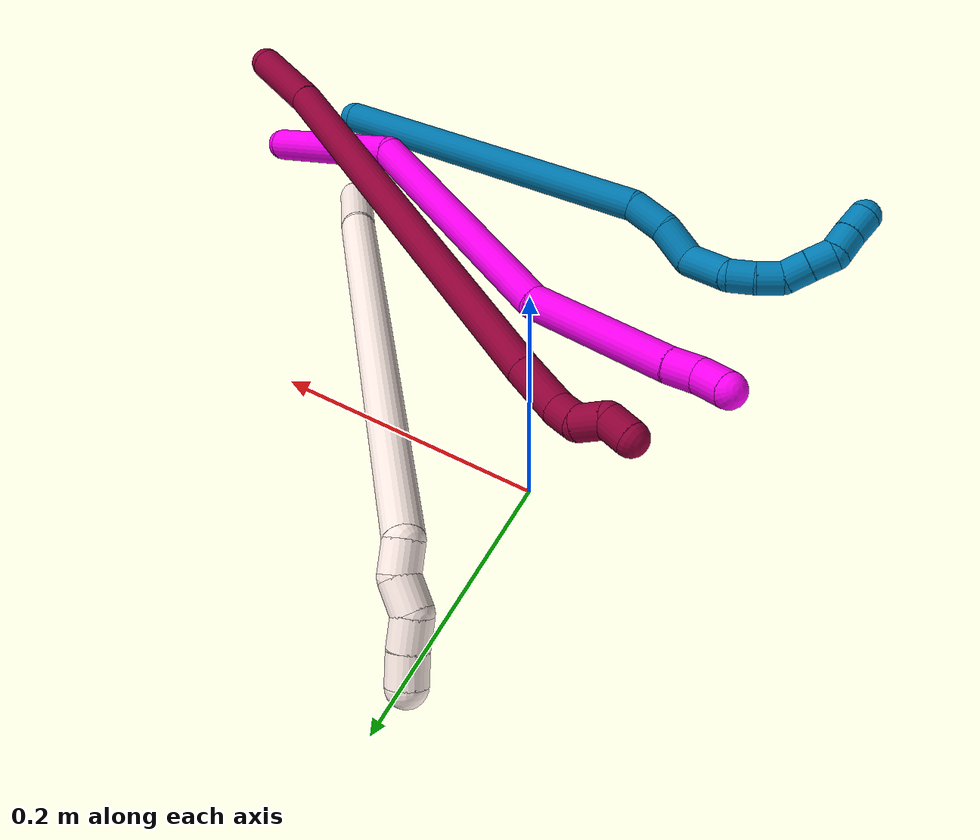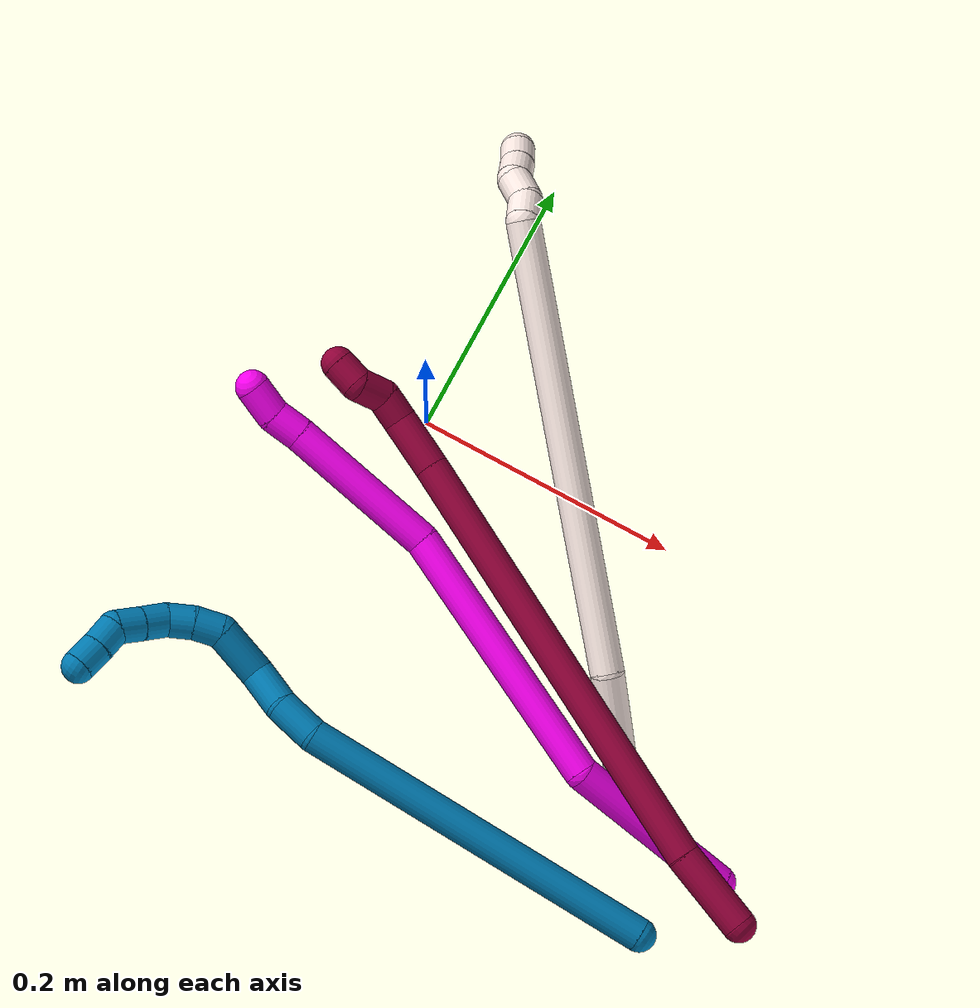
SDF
<sdf version="1.7">
 <world name="default">
  <model name="8">
   <static>0</static>
   <link name="8">
    <collision name="collision-cylinder-e_1_1_4">
     <pose>-0.001052 0.003684 -0.030771 -3.02244 -0.033928 0.554224</pose>
     <geometry><cylinder><radius>0.0125</radius><length>0.062018</length></cylinder></geometry>
     <surface>
      <friction><ode><mu>1.16</mu><mu2>1.16</mu2><slip1>0</slip1><slip2>0</slip2></ode></friction>
      <contact><ode><kp>1e+06</kp><kd>1</kd><max_vel>0</max_vel><min_depth>0.001</min_depth></ode></contact>
     </surface>
    </collision>
    <visual name="visual-cylinder-e_1_1_4">
     <pose>-0.001052 0.003684 -0.030771 -3.02244 -0.033928 0.554224</pose>
     <geometry><cylinder><radius>0.0125</radius><length>0.062018</length></cylinder></geometry>
     <material><ambient>0.584314 0 0.227451 1</ambient></material>
    </visual>
    <collision name="collision-cylinder-e_2_4_5">
     <pose>-0.017382 0.04238 -0.223273 -2.9284 -0.092065 0.813041</pose>
     <geometry><cylinder><radius>0.0125</radius><length>0.332361</length></cylinder></geometry>
     <surface>
      <friction><ode><mu>1.16</mu><mu2>1.16</mu2><slip1>0</slip1><slip2>0</slip2></ode></friction>
      <contact><ode><kp>1e+06</kp><kd>1</kd><max_vel>0</max_vel><min_depth>0.001</min_depth></ode></contact>
     </surface>
    </collision>
    <visual name="visual-cylinder-e_2_4_5">
     <pose>-0.017382 0.04238 -0.223273 -2.9284 -0.092065 0.813041</pose>
     <geometry><cylinder><radius>0.0125</radius><length>0.332361</length></cylinder></geometry>
     <material><ambient>0.584314 0 0.227451 1</ambient></material>
    </visual>
    <collision name="collision-cylinder-e_3_5_6">
     <pose>-0.034722 0.080782 -0.405328 -2.97636 -0.099778 1.08522</pose>
     <geometry><cylinder><radius>0.0125</radius><length>0.041415</length></cylinder></geometry>
     <surface>
      <friction><ode><mu>1.16</mu><mu2>1.16</mu2><slip1>0</slip1><slip2>0</slip2></ode></friction>
      <contact><ode><kp>1e+06</kp><kd>1</kd><max_vel>0</max_vel><min_depth>0.001</min_depth></ode></contact>
     </surface>
    </collision>
    <visual name="visual-cylinder-e_3_5_6">
     <pose>-0.034722 0.080782 -0.405328 -2.97636 -0.099778 1.08522</pose>
     <geometry><cylinder><radius>0.0125</radius><length>0.041415</length></cylinder></geometry>
     <material><ambient>0.584314 0 0.227451 1</ambient></material>
    </visual>
    <collision name="collision-cylinder-e_4_6_7">
     <pose>-0.039425 0.083405 -0.435877 3.06688 -0.251957 -2.5677</pose>
     <geometry><cylinder><radius>0.0125</radius><length>0.021177</length></cylinder></geometry>
     <surface>
      <friction><ode><mu>1.16</mu><mu2>1.16</mu2><slip1>0</slip1><slip2>0</slip2></ode></friction>
      <contact><ode><kp>1e+06</kp><kd>1</kd><max_vel>0</max_vel><min_depth>0.001</min_depth></ode></contact>
     </surface>
    </collision>
    <visual name="visual-cylinder-e_4_6_7">
     <pose>-0.039425 0.083405 -0.435877 3.06688 -0.251957 -2.5677</pose>
     <geometry><cylinder><radius>0.0125</radius><length>0.021177</length></cylinder></geometry>
     <material><ambient>0.584314 0 0.227451 1</ambient></material>
    </visual>
    <collision name="collision-cylinder-e_5_7_8">
     <pose>-0.042092 0.075832 -0.455387 2.5089 -0.002423 -0.007402</pose>
     <geometry><cylinder><radius>0.0125</radius><length>0.023025</length></cylinder></geometry>
     <surface>
      <friction><ode><mu>1.16</mu><mu2>1.16</mu2><slip1>0</slip1><slip2>0</slip2></ode></friction>
      <contact><ode><kp>1e+06</kp><kd>1</kd><max_vel>0</max_vel><min_depth>0.001</min_depth></ode></contact>
     </surface>
    </collision>
    <visual name="visual-cylinder-e_5_7_8">
     <pose>-0.042092 0.075832 -0.455387 2.5089 -0.002423 -0.007402</pose>
     <geometry><cylinder><radius>0.0125</radius><length>0.023025</length></cylinder></geometry>
     <material><ambient>0.584314 0 0.227451 1</ambient></material>
    </visual>
    <collision name="collision-cylinder-e_6_8_2">
     <pose>-0.042017 0.069748 -0.474646 -3.06917 0.010256 -0.28124</pose>
     <geometry><cylinder><radius>0.0125</radius><length>0.020003</length></cylinder></geometry>
     <surface>
      <friction><ode><mu>1.16</mu><mu2>1.16</mu2><slip1>0</slip1><slip2>0</slip2></ode></friction>
      <contact><ode><kp>1e+06</kp><kd>1</kd><max_vel>0</max_vel><min_depth>0.001</min_depth></ode></contact>
     </surface>
    </collision>
    <visual name="visual-cylinder-e_6_8_2">
     <pose>-0.042017 0.069748 -0.474646 -3.06917 0.010256 -0.28124</pose>
     <geometry><cylinder><radius>0.0125</radius><length>0.020003</length></cylinder></geometry>
     <material><ambient>0.584314 0 0.227451 1</ambient></material>
    </visual>
    <collision name="collision-sphere-2">
     <pose>-0.041915 0.070472 -0.484621 0 -0 0</pose>
     <geometry><sphere><radius>0.0125</radius></sphere></geometry>
     <surface>
      <friction><ode><mu>1.16</mu><mu2>1.16</mu2><slip1>0</slip1><slip2>0</slip2></ode></friction>
      <contact><ode><kp>1e+06</kp><kd>1</kd><max_vel>0</max_vel><min_depth>0.001</min_depth></ode></contact>
     </surface>
    </collision>
    <visual name="visual-sphere-2">
     <pose>-0.041915 0.070472 -0.484621 0 -0 0</pose>
     <geometry><sphere><radius>0.0125</radius></sphere></geometry>
     <material><ambient>0.584314 0 0.227451 1</ambient></material>
    </visual>
    <collision name="collision-sphere-4">
     <pose>-0.002104 0.007368 -0.061543 0 -0 0</pose>
     <geometry><sphere><radius>0.0125</radius></sphere></geometry>
     <surface>
      <friction><ode><mu>1.16</mu><mu2>1.16</mu2><slip1>0</slip1><slip2>0</slip2></ode></friction>
      <contact><ode><kp>1e+06</kp><kd>1</kd><max_vel>0</max_vel><min_depth>0.001</min_depth></ode></contact>
     </surface>
    </collision>
    <visual name="visual-sphere-4">
     <pose>-0.002104 0.007368 -0.061543 0 -0 0</pose>
     <geometry><sphere><radius>0.0125</radius></sphere></geometry>
     <material><ambient>0.584314 0 0.227451 1</ambient></material>
    </visual>
    <collision name="collision-sphere-1">
     <geometry><sphere><radius>0.0125</radius></sphere></geometry>
     <surface>
      <friction><ode><mu>1.16</mu><mu2>1.16</mu2><slip1>0</slip1><slip2>0</slip2></ode></friction>
      <contact><ode><kp>1e+06</kp><kd>1</kd><max_vel>0</max_vel><min_depth>0.001</min_depth></ode></contact>
     </surface>
    </collision>
    <visual name="visual-sphere-1">
     <geometry><sphere><radius>0.0125</radius></sphere></geometry>
     <material><ambient>0.584314 0 0.227451 1</ambient></material>
    </visual>
    <collision name="collision-sphere-8">
     <pose>-0.04212 0.069025 -0.464671 0 -0 0</pose>
     <geometry><sphere><radius>0.0125</radius></sphere></geometry>
     <surface>
      <friction><ode><mu>1.16</mu><mu2>1.16</mu2><slip1>0</slip1><slip2>0</slip2></ode></friction>
      <contact><ode><kp>1e+06</kp><kd>1</kd><max_vel>0</max_vel><min_depth>0.001</min_depth></ode></contact>
     </surface>
    </collision>
    <visual name="visual-sphere-8">
     <pose>-0.04212 0.069025 -0.464671 0 -0 0</pose>
     <geometry><sphere><radius>0.0125</radius></sphere></geometry>
     <material><ambient>0.584314 0 0.227451 1</ambient></material>
    </visual>
    <collision name="collision-sphere-5">
     <pose>-0.032659 0.077392 -0.385004 0 -0 0</pose>
     <geometry><sphere><radius>0.0125</radius></sphere></geometry>
     <surface>
      <friction><ode><mu>1.16</mu><mu2>1.16</mu2><slip1>0</slip1><slip2>0</slip2></ode></friction>
      <contact><ode><kp>1e+06</kp><kd>1</kd><max_vel>0</max_vel><min_depth>0.001</min_depth></ode></contact>
     </surface>
    </collision>
    <visual name="visual-sphere-5">
     <pose>-0.032659 0.077392 -0.385004 0 -0 0</pose>
     <geometry><sphere><radius>0.0125</radius></sphere></geometry>
     <material><ambient>0.584314 0 0.227451 1</ambient></material>
    </visual>
    <collision name="collision-sphere-6">
     <pose>-0.036785 0.084171 -0.425652 0 -0 0</pose>
     <geometry><sphere><radius>0.0125</radius></sphere></geometry>
     <surface>
      <friction><ode><mu>1.16</mu><mu2>1.16</mu2><slip1>0</slip1><slip2>0</slip2></ode></friction>
      <contact><ode><kp>1e+06</kp><kd>1</kd><max_vel>0</max_vel><min_depth>0.001</min_depth></ode></contact>
     </surface>
    </collision>
    <visual name="visual-sphere-6">
     <pose>-0.036785 0.084171 -0.425652 0 -0 0</pose>
     <geometry><sphere><radius>0.0125</radius></sphere></geometry>
     <material><ambient>0.584314 0 0.227451 1</ambient></material>
    </visual>
    <collision name="collision-sphere-7">
     <pose>-0.042064 0.08264 -0.446103 0 -0 0</pose>
     <geometry><sphere><radius>0.0125</radius></sphere></geometry>
     <surface>
      <friction><ode><mu>1.16</mu><mu2>1.16</mu2><slip1>0</slip1><slip2>0</slip2></ode></friction>
      <contact><ode><kp>1e+06</kp><kd>1</kd><max_vel>0</max_vel><min_depth>0.001</min_depth></ode></contact>
     </surface>
    </collision>
    <visual name="visual-sphere-7">
     <pose>-0.042064 0.08264 -0.446103 0 -0 0</pose>
     <geometry><sphere><radius>0.0125</radius></sphere></geometry>
     <material><ambient>0.584314 0 0.227451 1</ambient></material>
    </visual>
    <inertial>
     <pose>-0.01985 0.045134 -0.244226 0 -0 0</pose>
     <mass>0.5</mass>
     <inertia>
      <ixx>0.004363</ixx>
      <ixy>0</ixy>
      <ixz>0</ixz>
      <iyy>0.000201</iyy>
      <iyz>0</iyz>
      <izz>-0.000404</izz>
     </inertia>
    </inertial>
   </link>
   <pose>0.374282 -0.227285 0.070635 -1.70466 0.721944 -1.95806</pose>
  </model>
  <model name="9">
   <static>0</static>
   <link name="9">
    <collision name="collision-cylinder-e_1_1_4">
     <pose>-0.010007 5.3e-05 -0.136772 -3.1412 -0.073035 3.13089</pose>
     <geometry><cylinder><radius>0.0125</radius><length>0.274276</length></cylinder></geometry>
     <surface>
      <friction><ode><mu>1.16</mu><mu2>1.16</mu2><slip1>0</slip1><slip2>0</slip2></ode></friction>
      <contact><ode><kp>1e+06</kp><kd>1</kd><max_vel>0</max_vel><min_depth>0.001</min_depth></ode></contact>
     </surface>
    </collision>
    <visual name="visual-cylinder-e_1_1_4">
     <pose>-0.010007 5.3e-05 -0.136772 -3.1412 -0.073035 3.13089</pose>
     <geometry><cylinder><radius>0.0125</radius><length>0.274276</length></cylinder></geometry>
     <material><ambient>0 0.490196 0.709804 1</ambient></material>
    </visual>
    <collision name="collision-cylinder-e_2_4_5">
     <pose>-0.016527 -0.000874 -0.289067 3.07845 0.220548 2.58593</pose>
     <geometry><cylinder><radius>0.0125</radius><length>0.03188</length></cylinder></geometry>
     <surface>
      <friction><ode><mu>1.16</mu><mu2>1.16</mu2><slip1>0</slip1><slip2>0</slip2></ode></friction>
      <contact><ode><kp>1e+06</kp><kd>1</kd><max_vel>0</max_vel><min_depth>0.001</min_depth></ode></contact>
     </surface>
    </collision>
    <visual name="visual-cylinder-e_2_4_5">
     <pose>-0.016527 -0.000874 -0.289067 3.07845 0.220548 2.58593</pose>
     <geometry><cylinder><radius>0.0125</radius><length>0.03188</length></cylinder></geometry>
     <material><ambient>0 0.490196 0.709804 1</ambient></material>
    </visual>
    <collision name="collision-cylinder-e_3_5_6">
     <pose>-0.005602 -0.004046 -0.318799 2.98862 0.47744 2.53145</pose>
     <geometry><cylinder><radius>0.0125</radius><length>0.032375</length></cylinder></geometry>
     <surface>
      <friction><ode><mu>1.16</mu><mu2>1.16</mu2><slip1>0</slip1><slip2>0</slip2></ode></friction>
      <contact><ode><kp>1e+06</kp><kd>1</kd><max_vel>0</max_vel><min_depth>0.001</min_depth></ode></contact>
     </surface>
    </collision>
    <visual name="visual-cylinder-e_3_5_6">
     <pose>-0.005602 -0.004046 -0.318799 2.98862 0.47744 2.53145</pose>
     <geometry><cylinder><radius>0.0125</radius><length>0.032375</length></cylinder></geometry>
     <material><ambient>0 0.490196 0.709804 1</ambient></material>
    </visual>
    <collision name="collision-cylinder-e_4_6_7">
     <pose>0.002984 0.000572 -0.351912 -2.79587 0.057065 -0.324047</pose>
     <geometry><cylinder><radius>0.0125</radius><length>0.040251</length></cylinder></geometry>
     <surface>
      <friction><ode><mu>1.16</mu><mu2>1.16</mu2><slip1>0</slip1><slip2>0</slip2></ode></friction>
      <contact><ode><kp>1e+06</kp><kd>1</kd><max_vel>0</max_vel><min_depth>0.001</min_depth></ode></contact>
     </surface>
    </collision>
    <visual name="visual-cylinder-e_4_6_7">
     <pose>0.002984 0.000572 -0.351912 -2.79587 0.057065 -0.324047</pose>
     <geometry><cylinder><radius>0.0125</radius><length>0.040251</length></cylinder></geometry>
     <material><ambient>0 0.490196 0.709804 1</ambient></material>
    </visual>
    <collision name="collision-cylinder-e_5_7_8">
     <pose>0.000905 0.006557 -0.380638 3.05793 -0.316421 -2.62845</pose>
     <geometry><cylinder><radius>0.0125</radius><length>0.020743</length></cylinder></geometry>
     <surface>
      <friction><ode><mu>1.16</mu><mu2>1.16</mu2><slip1>0</slip1><slip2>0</slip2></ode></friction>
      <contact><ode><kp>1e+06</kp><kd>1</kd><max_vel>0</max_vel><min_depth>0.001</min_depth></ode></contact>
     </surface>
    </collision>
    <visual name="visual-cylinder-e_5_7_8">
     <pose>0.000905 0.006557 -0.380638 3.05793 -0.316421 -2.62845</pose>
     <geometry><cylinder><radius>0.0125</radius><length>0.020743</length></cylinder></geometry>
     <material><ambient>0 0.490196 0.709804 1</ambient></material>
    </visual>
    <collision name="collision-cylinder-e_6_8_9">
     <pose>-0.006825 0.003662 -0.39926 2.91041 -0.462122 -2.22469</pose>
     <geometry><cylinder><radius>0.0125</radius><length>0.0202</length></cylinder></geometry>
     <surface>
      <friction><ode><mu>1.16</mu><mu2>1.16</mu2><slip1>0</slip1><slip2>0</slip2></ode></friction>
      <contact><ode><kp>1e+06</kp><kd>1</kd><max_vel>0</max_vel><min_depth>0.001</min_depth></ode></contact>
     </surface>
    </collision>
    <visual name="visual-cylinder-e_6_8_9">
     <pose>-0.006825 0.003662 -0.39926 2.91041 -0.462122 -2.22469</pose>
     <geometry><cylinder><radius>0.0125</radius><length>0.0202</length></cylinder></geometry>
     <material><ambient>0 0.490196 0.709804 1</ambient></material>
    </visual>
    <collision name="collision-cylinder-e_7_9_10">
     <pose>-0.019234 0.001527 -0.414386 3.13152 -0.895981 -3.12063</pose>
     <geometry><cylinder><radius>0.0125</radius><length>0.020251</length></cylinder></geometry>
     <surface>
      <friction><ode><mu>1.16</mu><mu2>1.16</mu2><slip1>0</slip1><slip2>0</slip2></ode></friction>
      <contact><ode><kp>1e+06</kp><kd>1</kd><max_vel>0</max_vel><min_depth>0.001</min_depth></ode></contact>
     </surface>
    </collision>
    <visual name="visual-cylinder-e_7_9_10">
     <pose>-0.019234 0.001527 -0.414386 3.13152 -0.895981 -3.12063</pose>
     <geometry><cylinder><radius>0.0125</radius><length>0.020251</length></cylinder></geometry>
     <material><ambient>0 0.490196 0.709804 1</ambient></material>
    </visual>
    <collision name="collision-cylinder-e_8_10_11">
     <pose>-0.034719 0.001243 -0.427236 3.1079 -0.859773 -3.06814</pose>
     <geometry><cylinder><radius>0.0125</radius><length>0.020006</length></cylinder></geometry>
     <surface>
      <friction><ode><mu>1.16</mu><mu2>1.16</mu2><slip1>0</slip1><slip2>0</slip2></ode></friction>
      <contact><ode><kp>1e+06</kp><kd>1</kd><max_vel>0</max_vel><min_depth>0.001</min_depth></ode></contact>
     </surface>
    </collision>
    <visual name="visual-cylinder-e_8_10_11">
     <pose>-0.034719 0.001243 -0.427236 3.1079 -0.859773 -3.06814</pose>
     <geometry><cylinder><radius>0.0125</radius><length>0.020006</length></cylinder></geometry>
     <material><ambient>0 0.490196 0.709804 1</ambient></material>
    </visual>
    <collision name="collision-cylinder-e_9_11_12">
     <pose>-0.051858 -0.001845 -0.43446 1.81024 -1.27124 -1.50846</pose>
     <geometry><cylinder><radius>0.0125</radius><length>0.02001</length></cylinder></geometry>
     <surface>
      <friction><ode><mu>1.16</mu><mu2>1.16</mu2><slip1>0</slip1><slip2>0</slip2></ode></friction>
      <contact><ode><kp>1e+06</kp><kd>1</kd><max_vel>0</max_vel><min_depth>0.001</min_depth></ode></contact>
     </surface>
    </collision>
    <visual name="visual-cylinder-e_9_11_12">
     <pose>-0.051858 -0.001845 -0.43446 1.81024 -1.27124 -1.50846</pose>
     <geometry><cylinder><radius>0.0125</radius><length>0.02001</length></cylinder></geometry>
     <material><ambient>0 0.490196 0.709804 1</ambient></material>
    </visual>
    <collision name="collision-cylinder-e_10_12_2">
     <pose>-0.070913 -0.007533 -0.43657 2.03433 -1.25023 -1.72506</pose>
     <geometry><cylinder><radius>0.0125</radius><length>0.02001</length></cylinder></geometry>
     <surface>
      <friction><ode><mu>1.16</mu><mu2>1.16</mu2><slip1>0</slip1><slip2>0</slip2></ode></friction>
      <contact><ode><kp>1e+06</kp><kd>1</kd><max_vel>0</max_vel><min_depth>0.001</min_depth></ode></contact>
     </surface>
    </collision>
    <visual name="visual-cylinder-e_10_12_2">
     <pose>-0.070913 -0.007533 -0.43657 2.03433 -1.25023 -1.72506</pose>
     <geometry><cylinder><radius>0.0125</radius><length>0.02001</length></cylinder></geometry>
     <material><ambient>0 0.490196 0.709804 1</ambient></material>
    </visual>
    <collision name="collision-sphere-2">
     <pose>-0.080408 -0.010353 -0.437979 0 -0 0</pose>
     <geometry><sphere><radius>0.0125</radius></sphere></geometry>
     <surface>
      <friction><ode><mu>1.16</mu><mu2>1.16</mu2><slip1>0</slip1><slip2>0</slip2></ode></friction>
      <contact><ode><kp>1e+06</kp><kd>1</kd><max_vel>0</max_vel><min_depth>0.001</min_depth></ode></contact>
     </surface>
    </collision>
    <visual name="visual-sphere-2">
     <pose>-0.080408 -0.010353 -0.437979 0 -0 0</pose>
     <geometry><sphere><radius>0.0125</radius></sphere></geometry>
     <material><ambient>0 0.490196 0.709804 1</ambient></material>
    </visual>
    <collision name="collision-sphere-12">
     <pose>-0.061417 -0.004713 -0.43516 0 -0 0</pose>
     <geometry><sphere><radius>0.0125</radius></sphere></geometry>
     <surface>
      <friction><ode><mu>1.16</mu><mu2>1.16</mu2><slip1>0</slip1><slip2>0</slip2></ode></friction>
      <contact><ode><kp>1e+06</kp><kd>1</kd><max_vel>0</max_vel><min_depth>0.001</min_depth></ode></contact>
     </surface>
    </collision>
    <visual name="visual-sphere-12">
     <pose>-0.061417 -0.004713 -0.43516 0 -0 0</pose>
     <geometry><sphere><radius>0.0125</radius></sphere></geometry>
     <material><ambient>0 0.490196 0.709804 1</ambient></material>
    </visual>
    <collision name="collision-sphere-11">
     <pose>-0.042299 0.001023 -0.43376 0 -0 0</pose>
     <geometry><sphere><radius>0.0125</radius></sphere></geometry>
     <surface>
      <friction><ode><mu>1.16</mu><mu2>1.16</mu2><slip1>0</slip1><slip2>0</slip2></ode></friction>
      <contact><ode><kp>1e+06</kp><kd>1</kd><max_vel>0</max_vel><min_depth>0.001</min_depth></ode></contact>
     </surface>
    </collision>
    <visual name="visual-sphere-11">
     <pose>-0.042299 0.001023 -0.43376 0 -0 0</pose>
     <geometry><sphere><radius>0.0125</radius></sphere></geometry>
     <material><ambient>0 0.490196 0.709804 1</ambient></material>
    </visual>
    <collision name="collision-sphere-10">
     <pose>-0.02714 0.001463 -0.420711 0 -0 0</pose>
     <geometry><sphere><radius>0.0125</radius></sphere></geometry>
     <surface>
      <friction><ode><mu>1.16</mu><mu2>1.16</mu2><slip1>0</slip1><slip2>0</slip2></ode></friction>
      <contact><ode><kp>1e+06</kp><kd>1</kd><max_vel>0</max_vel><min_depth>0.001</min_depth></ode></contact>
     </surface>
    </collision>
    <visual name="visual-sphere-10">
     <pose>-0.02714 0.001463 -0.420711 0 -0 0</pose>
     <geometry><sphere><radius>0.0125</radius></sphere></geometry>
     <material><ambient>0 0.490196 0.709804 1</ambient></material>
    </visual>
    <collision name="collision-sphere-9">
     <pose>-0.011328 0.001591 -0.40806 0 -0 0</pose>
     <geometry><sphere><radius>0.0125</radius></sphere></geometry>
     <surface>
      <friction><ode><mu>1.16</mu><mu2>1.16</mu2><slip1>0</slip1><slip2>0</slip2></ode></friction>
      <contact><ode><kp>1e+06</kp><kd>1</kd><max_vel>0</max_vel><min_depth>0.001</min_depth></ode></contact>
     </surface>
    </collision>
    <visual name="visual-sphere-9">
     <pose>-0.011328 0.001591 -0.40806 0 -0 0</pose>
     <geometry><sphere><radius>0.0125</radius></sphere></geometry>
     <material><ambient>0 0.490196 0.709804 1</ambient></material>
    </visual>
    <collision name="collision-sphere-4">
     <pose>-0.020014 0.000107 -0.273544 0 -0 0</pose>
     <geometry><sphere><radius>0.0125</radius></sphere></geometry>
     <surface>
      <friction><ode><mu>1.16</mu><mu2>1.16</mu2><slip1>0</slip1><slip2>0</slip2></ode></friction>
      <contact><ode><kp>1e+06</kp><kd>1</kd><max_vel>0</max_vel><min_depth>0.001</min_depth></ode></contact>
     </surface>
    </collision>
    <visual name="visual-sphere-4">
     <pose>-0.020014 0.000107 -0.273544 0 -0 0</pose>
     <geometry><sphere><radius>0.0125</radius></sphere></geometry>
     <material><ambient>0 0.490196 0.709804 1</ambient></material>
    </visual>
    <collision name="collision-sphere-1">
     <geometry><sphere><radius>0.0125</radius></sphere></geometry>
     <surface>
      <friction><ode><mu>1.16</mu><mu2>1.16</mu2><slip1>0</slip1><slip2>0</slip2></ode></friction>
      <contact><ode><kp>1e+06</kp><kd>1</kd><max_vel>0</max_vel><min_depth>0.001</min_depth></ode></contact>
     </surface>
    </collision>
    <visual name="visual-sphere-1">
     <geometry><sphere><radius>0.0125</radius></sphere></geometry>
     <material><ambient>0 0.490196 0.709804 1</ambient></material>
    </visual>
    <collision name="collision-sphere-8">
     <pose>-0.002322 0.005733 -0.390461 0 -0 0</pose>
     <geometry><sphere><radius>0.0125</radius></sphere></geometry>
     <surface>
      <friction><ode><mu>1.16</mu><mu2>1.16</mu2><slip1>0</slip1><slip2>0</slip2></ode></friction>
      <contact><ode><kp>1e+06</kp><kd>1</kd><max_vel>0</max_vel><min_depth>0.001</min_depth></ode></contact>
     </surface>
    </collision>
    <visual name="visual-sphere-8">
     <pose>-0.002322 0.005733 -0.390461 0 -0 0</pose>
     <geometry><sphere><radius>0.0125</radius></sphere></geometry>
     <material><ambient>0 0.490196 0.709804 1</ambient></material>
    </visual>
    <collision name="collision-sphere-5">
     <pose>-0.01304 -0.001856 -0.30459 0 -0 0</pose>
     <geometry><sphere><radius>0.0125</radius></sphere></geometry>
     <surface>
      <friction><ode><mu>1.16</mu><mu2>1.16</mu2><slip1>0</slip1><slip2>0</slip2></ode></friction>
      <contact><ode><kp>1e+06</kp><kd>1</kd><max_vel>0</max_vel><min_depth>0.001</min_depth></ode></contact>
     </surface>
    </collision>
    <visual name="visual-sphere-5">
     <pose>-0.01304 -0.001856 -0.30459 0 -0 0</pose>
     <geometry><sphere><radius>0.0125</radius></sphere></geometry>
     <material><ambient>0 0.490196 0.709804 1</ambient></material>
    </visual>
    <collision name="collision-sphere-6">
     <pose>0.001837 -0.006237 -0.333008 0 -0 0</pose>
     <geometry><sphere><radius>0.0125</radius></sphere></geometry>
     <surface>
      <friction><ode><mu>1.16</mu><mu2>1.16</mu2><slip1>0</slip1><slip2>0</slip2></ode></friction>
      <contact><ode><kp>1e+06</kp><kd>1</kd><max_vel>0</max_vel><min_depth>0.001</min_depth></ode></contact>
     </surface>
    </collision>
    <visual name="visual-sphere-6">
     <pose>0.001837 -0.006237 -0.333008 0 -0 0</pose>
     <geometry><sphere><radius>0.0125</radius></sphere></geometry>
     <material><ambient>0 0.490196 0.709804 1</ambient></material>
    </visual>
    <collision name="collision-sphere-7">
     <pose>0.004132 0.007381 -0.370816 0 -0 0</pose>
     <geometry><sphere><radius>0.0125</radius></sphere></geometry>
     <surface>
      <friction><ode><mu>1.16</mu><mu2>1.16</mu2><slip1>0</slip1><slip2>0</slip2></ode></friction>
      <contact><ode><kp>1e+06</kp><kd>1</kd><max_vel>0</max_vel><min_depth>0.001</min_depth></ode></contact>
     </surface>
    </collision>
    <visual name="visual-sphere-7">
     <pose>0.004132 0.007381 -0.370816 0 -0 0</pose>
     <geometry><sphere><radius>0.0125</radius></sphere></geometry>
     <material><ambient>0 0.490196 0.709804 1</ambient></material>
    </visual>
    <inertial>
     <pose>-0.013985 -8.6e-05 -0.243086 0 -0 0</pose>
     <mass>0.5</mass>
     <inertia>
      <ixx>-0.001718</ixx>
      <ixy>0</ixy>
      <ixz>0</ixz>
      <iyy>0.001755</iyy>
      <iyz>0</iyz>
      <izz>9.4e-05</izz>
     </inertia>
    </inertial>
   </link>
   <pose>0.315144 -0.260228 0.012609 1.65491 0.520954 1.50633</pose>
  </model>
  <model name="10">
   <static>0</static>
   <link name="10">
    <collision name="collision-cylinder-e_1_1_4">
     <pose>-0.032452 0.012387 -0.057733 -2.93024 -0.50253 2.35786</pose>
     <geometry><cylinder><radius>0.0125</radius><length>0.134755</length></cylinder></geometry>
     <surface>
      <friction><ode><mu>1.16</mu><mu2>1.16</mu2><slip1>0</slip1><slip2>0</slip2></ode></friction>
      <contact><ode><kp>1e+06</kp><kd>1</kd><max_vel>0</max_vel><min_depth>0.001</min_depth></ode></contact>
     </surface>
    </collision>
    <visual name="visual-cylinder-e_1_1_4">
     <pose>-0.032452 0.012387 -0.057733 -2.93024 -0.50253 2.35786</pose>
     <geometry><cylinder><radius>0.0125</radius><length>0.134755</length></cylinder></geometry>
     <material><ambient>1 0 0.964706 1</ambient></material>
    </visual>
    <collision name="collision-cylinder-e_2_4_5">
     <pose>-0.132736 0.00056 -0.185392 2.80823 -0.741939 -2.32514</pose>
     <geometry><cylinder><radius>0.0125</radius><length>0.200769</length></cylinder></geometry>
     <surface>
      <friction><ode><mu>1.16</mu><mu2>1.16</mu2><slip1>0</slip1><slip2>0</slip2></ode></friction>
      <contact><ode><kp>1e+06</kp><kd>1</kd><max_vel>0</max_vel><min_depth>0.001</min_depth></ode></contact>
     </surface>
    </collision>
    <visual name="visual-cylinder-e_2_4_5">
     <pose>-0.132736 0.00056 -0.185392 2.80823 -0.741939 -2.32514</pose>
     <geometry><cylinder><radius>0.0125</radius><length>0.200769</length></cylinder></geometry>
     <material><ambient>1 0 0.964706 1</ambient></material>
    </visual>
    <collision name="collision-cylinder-e_3_5_6">
     <pose>-0.239045 -0.020336 -0.298646 -3.06516 -0.724716 2.94057</pose>
     <geometry><cylinder><radius>0.0125</radius><length>0.116084</length></cylinder></geometry>
     <surface>
      <friction><ode><mu>1.16</mu><mu2>1.16</mu2><slip1>0</slip1><slip2>0</slip2></ode></friction>
      <contact><ode><kp>1e+06</kp><kd>1</kd><max_vel>0</max_vel><min_depth>0.001</min_depth></ode></contact>
     </surface>
    </collision>
    <visual name="visual-cylinder-e_3_5_6">
     <pose>-0.239045 -0.020336 -0.298646 -3.06516 -0.724716 2.94057</pose>
     <geometry><cylinder><radius>0.0125</radius><length>0.116084</length></cylinder></geometry>
     <material><ambient>1 0 0.964706 1</ambient></material>
    </visual>
    <collision name="collision-cylinder-e_4_6_7">
     <pose>-0.285018 -0.015236 -0.350715 -2.94049 -0.698811 2.60133</pose>
     <geometry><cylinder><radius>0.0125</radius><length>0.023303</length></cylinder></geometry>
     <surface>
      <friction><ode><mu>1.16</mu><mu2>1.16</mu2><slip1>0</slip1><slip2>0</slip2></ode></friction>
      <contact><ode><kp>1e+06</kp><kd>1</kd><max_vel>0</max_vel><min_depth>0.001</min_depth></ode></contact>
     </surface>
    </collision>
    <visual name="visual-cylinder-e_4_6_7">
     <pose>-0.285018 -0.015236 -0.350715 -2.94049 -0.698811 2.60133</pose>
     <geometry><cylinder><radius>0.0125</radius><length>0.023303</length></cylinder></geometry>
     <material><ambient>1 0 0.964706 1</ambient></material>
    </visual>
    <collision name="collision-cylinder-e_5_7_2">
     <pose>-0.29836 -0.014438 -0.370511 3.05288 -0.484907 -2.78646</pose>
     <geometry><cylinder><radius>0.0125</radius><length>0.025089</length></cylinder></geometry>
     <surface>
      <friction><ode><mu>1.16</mu><mu2>1.16</mu2><slip1>0</slip1><slip2>0</slip2></ode></friction>
      <contact><ode><kp>1e+06</kp><kd>1</kd><max_vel>0</max_vel><min_depth>0.001</min_depth></ode></contact>
     </surface>
    </collision>
    <visual name="visual-cylinder-e_5_7_2">
     <pose>-0.29836 -0.014438 -0.370511 3.05288 -0.484907 -2.78646</pose>
     <geometry><cylinder><radius>0.0125</radius><length>0.025089</length></cylinder></geometry>
     <material><ambient>1 0 0.964706 1</ambient></material>
    </visual>
    <collision name="collision-sphere-2">
     <pose>-0.304208 -0.015421 -0.381566 0 -0 0</pose>
     <geometry><sphere><radius>0.0125</radius></sphere></geometry>
     <surface>
      <friction><ode><mu>1.16</mu><mu2>1.16</mu2><slip1>0</slip1><slip2>0</slip2></ode></friction>
      <contact><ode><kp>1e+06</kp><kd>1</kd><max_vel>0</max_vel><min_depth>0.001</min_depth></ode></contact>
     </surface>
    </collision>
    <visual name="visual-sphere-2">
     <pose>-0.304208 -0.015421 -0.381566 0 -0 0</pose>
     <geometry><sphere><radius>0.0125</radius></sphere></geometry>
     <material><ambient>1 0 0.964706 1</ambient></material>
    </visual>
    <collision name="collision-sphere-7">
     <pose>-0.292513 -0.013454 -0.359456 0 -0 0</pose>
     <geometry><sphere><radius>0.0125</radius></sphere></geometry>
     <surface>
      <friction><ode><mu>1.16</mu><mu2>1.16</mu2><slip1>0</slip1><slip2>0</slip2></ode></friction>
      <contact><ode><kp>1e+06</kp><kd>1</kd><max_vel>0</max_vel><min_depth>0.001</min_depth></ode></contact>
     </surface>
    </collision>
    <visual name="visual-sphere-7">
     <pose>-0.292513 -0.013454 -0.359456 0 -0 0</pose>
     <geometry><sphere><radius>0.0125</radius></sphere></geometry>
     <material><ambient>1 0 0.964706 1</ambient></material>
    </visual>
    <collision name="collision-sphere-6">
     <pose>-0.277522 -0.017018 -0.341975 0 -0 0</pose>
     <geometry><sphere><radius>0.0125</radius></sphere></geometry>
     <surface>
      <friction><ode><mu>1.16</mu><mu2>1.16</mu2><slip1>0</slip1><slip2>0</slip2></ode></friction>
      <contact><ode><kp>1e+06</kp><kd>1</kd><max_vel>0</max_vel><min_depth>0.001</min_depth></ode></contact>
     </surface>
    </collision>
    <visual name="visual-sphere-6">
     <pose>-0.277522 -0.017018 -0.341975 0 -0 0</pose>
     <geometry><sphere><radius>0.0125</radius></sphere></geometry>
     <material><ambient>1 0 0.964706 1</ambient></material>
    </visual>
    <collision name="collision-sphere-5">
     <pose>-0.200567 -0.023654 -0.255318 0 -0 0</pose>
     <geometry><sphere><radius>0.0125</radius></sphere></geometry>
     <surface>
      <friction><ode><mu>1.16</mu><mu2>1.16</mu2><slip1>0</slip1><slip2>0</slip2></ode></friction>
      <contact><ode><kp>1e+06</kp><kd>1</kd><max_vel>0</max_vel><min_depth>0.001</min_depth></ode></contact>
     </surface>
    </collision>
    <visual name="visual-sphere-5">
     <pose>-0.200567 -0.023654 -0.255318 0 -0 0</pose>
     <geometry><sphere><radius>0.0125</radius></sphere></geometry>
     <material><ambient>1 0 0.964706 1</ambient></material>
    </visual>
    <collision name="collision-sphere-1">
     <geometry><sphere><radius>0.0125</radius></sphere></geometry>
     <surface>
      <friction><ode><mu>1.16</mu><mu2>1.16</mu2><slip1>0</slip1><slip2>0</slip2></ode></friction>
      <contact><ode><kp>1e+06</kp><kd>1</kd><max_vel>0</max_vel><min_depth>0.001</min_depth></ode></contact>
     </surface>
    </collision>
    <visual name="visual-sphere-1">
     <geometry><sphere><radius>0.0125</radius></sphere></geometry>
     <material><ambient>1 0 0.964706 1</ambient></material>
    </visual>
    <collision name="collision-sphere-4">
     <pose>-0.064904 0.024775 -0.115466 0 -0 0</pose>
     <geometry><sphere><radius>0.0125</radius></sphere></geometry>
     <surface>
      <friction><ode><mu>1.16</mu><mu2>1.16</mu2><slip1>0</slip1><slip2>0</slip2></ode></friction>
      <contact><ode><kp>1e+06</kp><kd>1</kd><max_vel>0</max_vel><min_depth>0.001</min_depth></ode></contact>
     </surface>
    </collision>
    <visual name="visual-sphere-4">
     <pose>-0.064904 0.024775 -0.115466 0 -0 0</pose>
     <geometry><sphere><radius>0.0125</radius></sphere></geometry>
     <material><ambient>1 0 0.964706 1</ambient></material>
    </visual>
    <inertial>
     <pose>-0.145798 -0.002593 -0.194275 0 -0 0</pose>
     <mass>0.5</mass>
     <inertia>
      <ixx>-0.000817</ixx>
      <ixy>0</ixy>
      <ixz>0</ixz>
      <iyy>0.00063</iyy>
      <iyz>0</iyz>
      <izz>0.000742</izz>
     </inertia>
    </inertial>
   </link>
   <pose>0.347685 -0.199569 0.014467 2.79359 -0.642095 0.007205</pose>
  </model>
  <model name="11">
   <static>0</static>
   <link name="11">
    <collision name="collision-cylinder-e_1_1_4">
     <pose>-0.020137 -0.013219 -0.037763 2.80487 -0.466291 -1.89913</pose>
     <geometry><cylinder><radius>0.0125</radius><length>0.089584</length></cylinder></geometry>
     <surface>
      <friction><ode><mu>1.16</mu><mu2>1.16</mu2><slip1>0</slip1><slip2>0</slip2></ode></friction>
      <contact><ode><kp>1e+06</kp><kd>1</kd><max_vel>0</max_vel><min_depth>0.001</min_depth></ode></contact>
     </surface>
    </collision>
    <visual name="visual-cylinder-e_1_1_4">
     <pose>-0.020137 -0.013219 -0.037763 2.80487 -0.466291 -1.89913</pose>
     <geometry><cylinder><radius>0.0125</radius><length>0.089584</length></cylinder></geometry>
     <material><ambient>1 0.933333 0.909804 1</ambient></material>
    </visual>
    <collision name="collision-cylinder-e_2_4_5">
     <pose>-0.137835 -0.036831 -0.207416 3.06296 -0.635403 -2.90347</pose>
     <geometry><cylinder><radius>0.0125</radius><length>0.32876</length></cylinder></geometry>
     <surface>
      <friction><ode><mu>1.16</mu><mu2>1.16</mu2><slip1>0</slip1><slip2>0</slip2></ode></friction>
      <contact><ode><kp>1e+06</kp><kd>1</kd><max_vel>0</max_vel><min_depth>0.001</min_depth></ode></contact>
     </surface>
    </collision>
    <visual name="visual-cylinder-e_2_4_5">
     <pose>-0.137835 -0.036831 -0.207416 3.06296 -0.635403 -2.90347</pose>
     <geometry><cylinder><radius>0.0125</radius><length>0.32876</length></cylinder></geometry>
     <material><ambient>1 0.933333 0.909804 1</ambient></material>
    </visual>
    <collision name="collision-cylinder-e_3_5_6">
     <pose>-0.244643 -0.044215 -0.341987 -2.29884 -1.15986 1.94145</pose>
     <geometry><cylinder><radius>0.0125</radius><length>0.020177</length></cylinder></geometry>
     <surface>
      <friction><ode><mu>1.16</mu><mu2>1.16</mu2><slip1>0</slip1><slip2>0</slip2></ode></friction>
      <contact><ode><kp>1e+06</kp><kd>1</kd><max_vel>0</max_vel><min_depth>0.001</min_depth></ode></contact>
     </surface>
    </collision>
    <visual name="visual-cylinder-e_3_5_6">
     <pose>-0.244643 -0.044215 -0.341987 -2.29884 -1.15986 1.94145</pose>
     <geometry><cylinder><radius>0.0125</radius><length>0.020177</length></cylinder></geometry>
     <material><ambient>1 0.933333 0.909804 1</ambient></material>
    </visual>
    <collision name="collision-cylinder-e_4_6_7">
     <pose>-0.260519 -0.035184 -0.350523 -2.34192 -0.668056 1.37505</pose>
     <geometry><cylinder><radius>0.0125</radius><length>0.021398</length></cylinder></geometry>
     <surface>
      <friction><ode><mu>1.16</mu><mu2>1.16</mu2><slip1>0</slip1><slip2>0</slip2></ode></friction>
      <contact><ode><kp>1e+06</kp><kd>1</kd><max_vel>0</max_vel><min_depth>0.001</min_depth></ode></contact>
     </surface>
    </collision>
    <visual name="visual-cylinder-e_4_6_7">
     <pose>-0.260519 -0.035184 -0.350523 -2.34192 -0.668056 1.37505</pose>
     <geometry><cylinder><radius>0.0125</radius><length>0.021398</length></cylinder></geometry>
     <material><ambient>1 0.933333 0.909804 1</ambient></material>
    </visual>
    <collision name="collision-cylinder-e_5_7_8">
     <pose>-0.276006 -0.024468 -0.356905 -1.68302 -1.08107 1.18281</pose>
     <geometry><cylinder><radius>0.0125</radius><length>0.020078</length></cylinder></geometry>
     <surface>
      <friction><ode><mu>1.16</mu><mu2>1.16</mu2><slip1>0</slip1><slip2>0</slip2></ode></friction>
      <contact><ode><kp>1e+06</kp><kd>1</kd><max_vel>0</max_vel><min_depth>0.001</min_depth></ode></contact>
     </surface>
    </collision>
    <visual name="visual-cylinder-e_5_7_8">
     <pose>-0.276006 -0.024468 -0.356905 -1.68302 -1.08107 1.18281</pose>
     <geometry><cylinder><radius>0.0125</radius><length>0.020078</length></cylinder></geometry>
     <material><ambient>1 0.933333 0.909804 1</ambient></material>
    </visual>
    <collision name="collision-cylinder-e_6_8_2">
     <pose>-0.29335 -0.014646 -0.358744 -1.8209 -1.01291 1.24042</pose>
     <geometry><cylinder><radius>0.0125</radius><length>0.020003</length></cylinder></geometry>
     <surface>
      <friction><ode><mu>1.16</mu><mu2>1.16</mu2><slip1>0</slip1><slip2>0</slip2></ode></friction>
      <contact><ode><kp>1e+06</kp><kd>1</kd><max_vel>0</max_vel><min_depth>0.001</min_depth></ode></contact>
     </surface>
    </collision>
    <visual name="visual-cylinder-e_6_8_2">
     <pose>-0.29335 -0.014646 -0.358744 -1.8209 -1.01291 1.24042</pose>
     <geometry><cylinder><radius>0.0125</radius><length>0.020003</length></cylinder></geometry>
     <material><ambient>1 0.933333 0.909804 1</ambient></material>
    </visual>
    <collision name="collision-sphere-2">
     <pose>-0.301835 -0.009516 -0.360055 0 -0 0</pose>
     <geometry><sphere><radius>0.0125</radius></sphere></geometry>
     <surface>
      <friction><ode><mu>1.16</mu><mu2>1.16</mu2><slip1>0</slip1><slip2>0</slip2></ode></friction>
      <contact><ode><kp>1e+06</kp><kd>1</kd><max_vel>0</max_vel><min_depth>0.001</min_depth></ode></contact>
     </surface>
    </collision>
    <visual name="visual-sphere-2">
     <pose>-0.301835 -0.009516 -0.360055 0 -0 0</pose>
     <geometry><sphere><radius>0.0125</radius></sphere></geometry>
     <material><ambient>1 0.933333 0.909804 1</ambient></material>
    </visual>
    <collision name="collision-sphere-4">
     <pose>-0.040275 -0.026438 -0.075526 0 -0 0</pose>
     <geometry><sphere><radius>0.0125</radius></sphere></geometry>
     <surface>
      <friction><ode><mu>1.16</mu><mu2>1.16</mu2><slip1>0</slip1><slip2>0</slip2></ode></friction>
      <contact><ode><kp>1e+06</kp><kd>1</kd><max_vel>0</max_vel><min_depth>0.001</min_depth></ode></contact>
     </surface>
    </collision>
    <visual name="visual-sphere-4">
     <pose>-0.040275 -0.026438 -0.075526 0 -0 0</pose>
     <geometry><sphere><radius>0.0125</radius></sphere></geometry>
     <material><ambient>1 0.933333 0.909804 1</ambient></material>
    </visual>
    <collision name="collision-sphere-1">
     <geometry><sphere><radius>0.0125</radius></sphere></geometry>
     <surface>
      <friction><ode><mu>1.16</mu><mu2>1.16</mu2><slip1>0</slip1><slip2>0</slip2></ode></friction>
      <contact><ode><kp>1e+06</kp><kd>1</kd><max_vel>0</max_vel><min_depth>0.001</min_depth></ode></contact>
     </surface>
    </collision>
    <visual name="visual-sphere-1">
     <geometry><sphere><radius>0.0125</radius></sphere></geometry>
     <material><ambient>1 0.933333 0.909804 1</ambient></material>
    </visual>
    <collision name="collision-sphere-8">
     <pose>-0.284865 -0.019776 -0.357434 0 -0 0</pose>
     <geometry><sphere><radius>0.0125</radius></sphere></geometry>
     <surface>
      <friction><ode><mu>1.16</mu><mu2>1.16</mu2><slip1>0</slip1><slip2>0</slip2></ode></friction>
      <contact><ode><kp>1e+06</kp><kd>1</kd><max_vel>0</max_vel><min_depth>0.001</min_depth></ode></contact>
     </surface>
    </collision>
    <visual name="visual-sphere-8">
     <pose>-0.284865 -0.019776 -0.357434 0 -0 0</pose>
     <geometry><sphere><radius>0.0125</radius></sphere></geometry>
     <material><ambient>1 0.933333 0.909804 1</ambient></material>
    </visual>
    <collision name="collision-sphere-5">
     <pose>-0.235395 -0.047224 -0.339306 0 -0 0</pose>
     <geometry><sphere><radius>0.0125</radius></sphere></geometry>
     <surface>
      <friction><ode><mu>1.16</mu><mu2>1.16</mu2><slip1>0</slip1><slip2>0</slip2></ode></friction>
      <contact><ode><kp>1e+06</kp><kd>1</kd><max_vel>0</max_vel><min_depth>0.001</min_depth></ode></contact>
     </surface>
    </collision>
    <visual name="visual-sphere-5">
     <pose>-0.235395 -0.047224 -0.339306 0 -0 0</pose>
     <geometry><sphere><radius>0.0125</radius></sphere></geometry>
     <material><ambient>1 0.933333 0.909804 1</ambient></material>
    </visual>
    <collision name="collision-sphere-6">
     <pose>-0.253892 -0.041207 -0.344669 0 -0 0</pose>
     <geometry><sphere><radius>0.0125</radius></sphere></geometry>
     <surface>
      <friction><ode><mu>1.16</mu><mu2>1.16</mu2><slip1>0</slip1><slip2>0</slip2></ode></friction>
      <contact><ode><kp>1e+06</kp><kd>1</kd><max_vel>0</max_vel><min_depth>0.001</min_depth></ode></contact>
     </surface>
    </collision>
    <visual name="visual-sphere-6">
     <pose>-0.253892 -0.041207 -0.344669 0 -0 0</pose>
     <geometry><sphere><radius>0.0125</radius></sphere></geometry>
     <material><ambient>1 0.933333 0.909804 1</ambient></material>
    </visual>
    <collision name="collision-sphere-7">
     <pose>-0.267147 -0.029161 -0.356376 0 -0 0</pose>
     <geometry><sphere><radius>0.0125</radius></sphere></geometry>
     <surface>
      <friction><ode><mu>1.16</mu><mu2>1.16</mu2><slip1>0</slip1><slip2>0</slip2></ode></friction>
      <contact><ode><kp>1e+06</kp><kd>1</kd><max_vel>0</max_vel><min_depth>0.001</min_depth></ode></contact>
     </surface>
    </collision>
    <visual name="visual-sphere-7">
     <pose>-0.267147 -0.029161 -0.356376 0 -0 0</pose>
     <geometry><sphere><radius>0.0125</radius></sphere></geometry>
     <material><ambient>1 0.933333 0.909804 1</ambient></material>
    </visual>
    <inertial>
     <pose>-0.138078 -0.031444 -0.200631 0 -0 0</pose>
     <mass>0.5</mass>
     <inertia>
      <ixx>-0.002982</ixx>
      <ixy>0</ixy>
      <ixz>0</ixz>
      <iyy>0.00233</iyy>
      <iyz>0</iyz>
      <izz>0.001974</izz>
     </inertia>
    </inertial>
   </link>
   <pose>0.256251 -0.173308 0.016505 -2.09624 -0.361462 -1.63028</pose>
  </model>
 </world>
</sdf>
